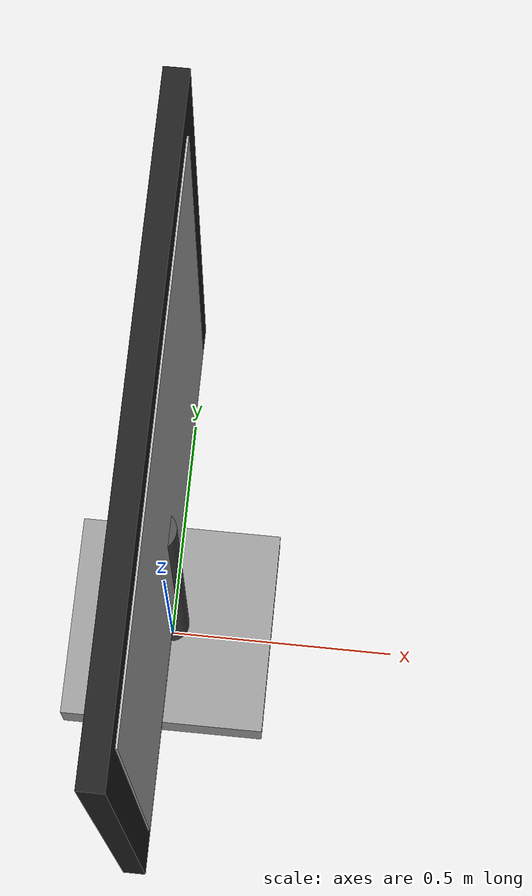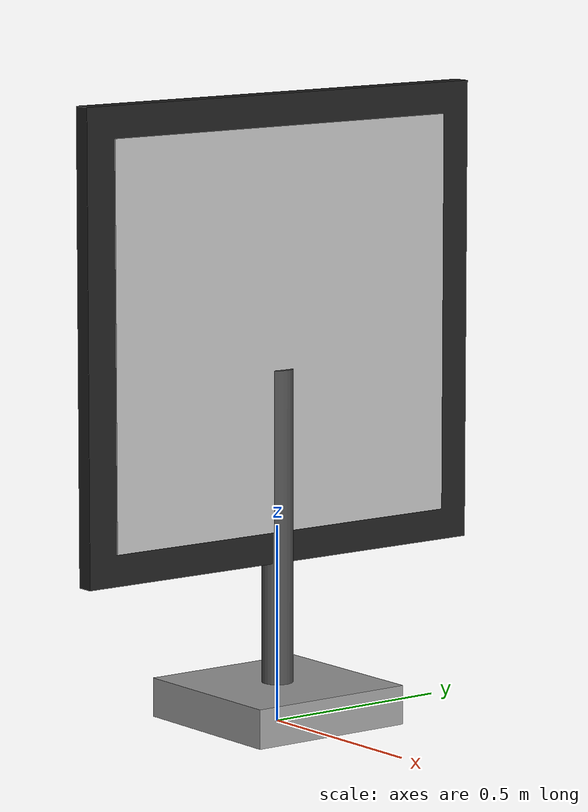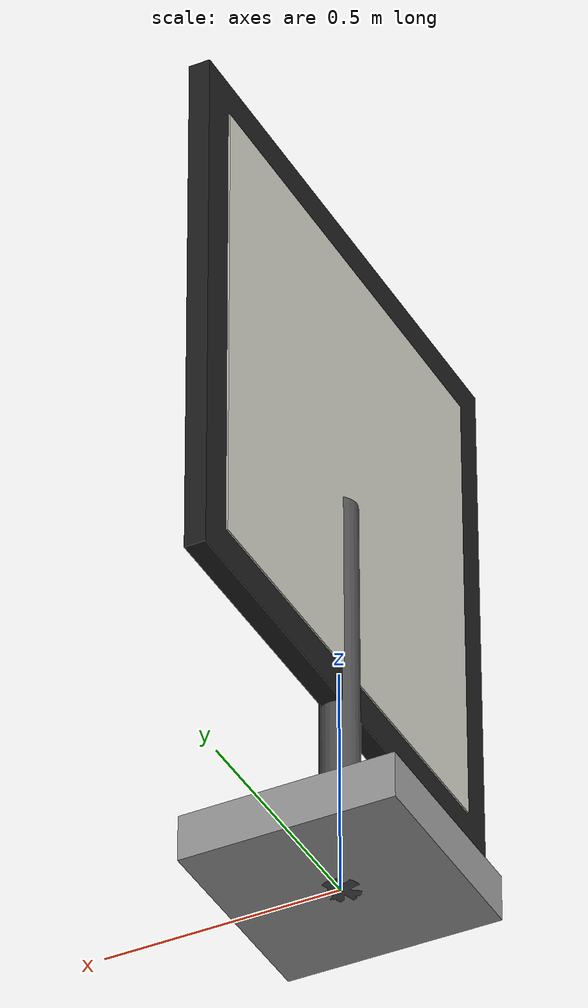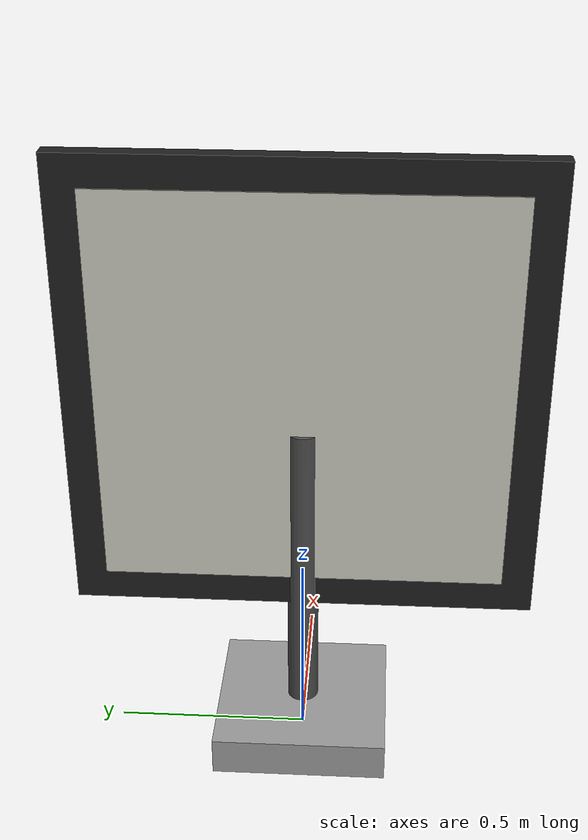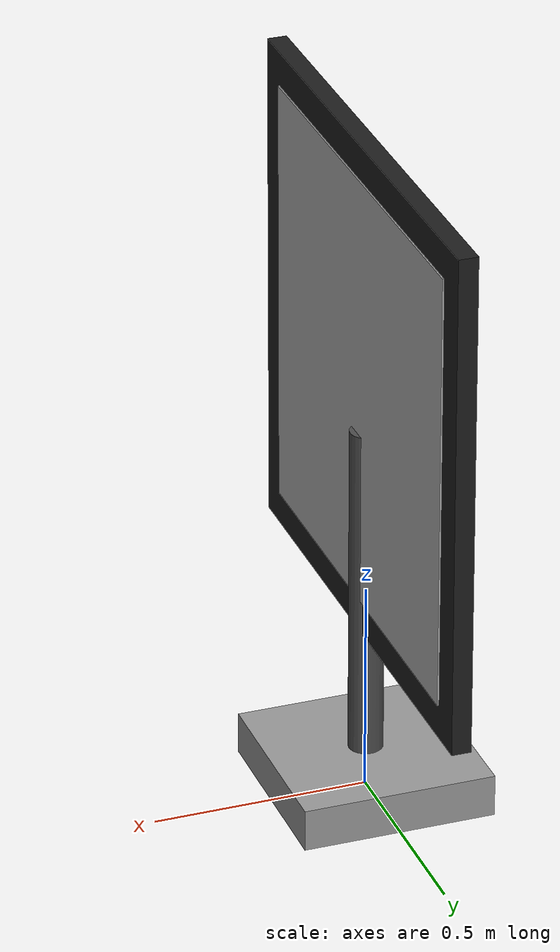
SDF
<?xml version="1.0"?>
<sdf version="1.6">
  <model name="vln_aruco_board">
    <static>true</static>
    <link name="board_link">
      <collision name="board_collision">
        <pose>0 0 1.0 0 0 0</pose>
        <geometry>
          <box>
            <size>0.04 1.1 1.1</size>
          </box>
        </geometry>
      </collision>

      <visual name="board_frame">
        <pose>0 0 1.0 0 0 0</pose>
        <geometry>
          <box>
            <size>0.045 1.18 1.18</size>
          </box>
        </geometry>
        <material>
          <script>
            <uri>file://media/materials/scripts/gazebo.material</uri>
            <name>Gazebo/FlatBlack</name>
          </script>
        </material>
      </visual>

      <visual name="board_face">
        <pose>0.023 0 1.0 0 0 0</pose>
        <geometry>
          <box>
            <size>0.006 1.02 1.02</size>
          </box>
        </geometry>
        <material>
          <script>
            <uri>model://vln_aruco_board/materials/scripts</uri>
            <uri>model://vln_aruco_board/materials/textures</uri>
            <name>VLN/ArucoBoard</name>
          </script>
        </material>
      </visual>

      <visual name="board_back">
        <pose>-0.023 0 1.0 0 0 0</pose>
        <geometry>
          <box>
            <size>0.006 1.02 1.02</size>
          </box>
        </geometry>
        <material>
          <script>
            <uri>file://media/materials/scripts/gazebo.material</uri>
            <name>Gazebo/PaintedWall</name>
          </script>
        </material>
      </visual>

      <visual name="support_post">
        <pose>0 0 0.45 0 0 0</pose>
        <geometry>
          <cylinder>
            <radius>0.04</radius>
            <length>0.9</length>
          </cylinder>
        </geometry>
        <material>
          <script>
            <uri>file://media/materials/scripts/gazebo.material</uri>
            <name>Gazebo/DarkGrey</name>
          </script>
        </material>
      </visual>

      <visual name="support_base">
        <pose>0 0 0.05 0 0 0</pose>
        <geometry>
          <box>
            <size>0.45 0.45 0.10</size>
          </box>
        </geometry>
        <material>
          <script>
            <uri>file://media/materials/scripts/gazebo.material</uri>
            <name>Gazebo/Grey</name>
          </script>
        </material>
      </visual>
    </link>
  </model>
</sdf>
